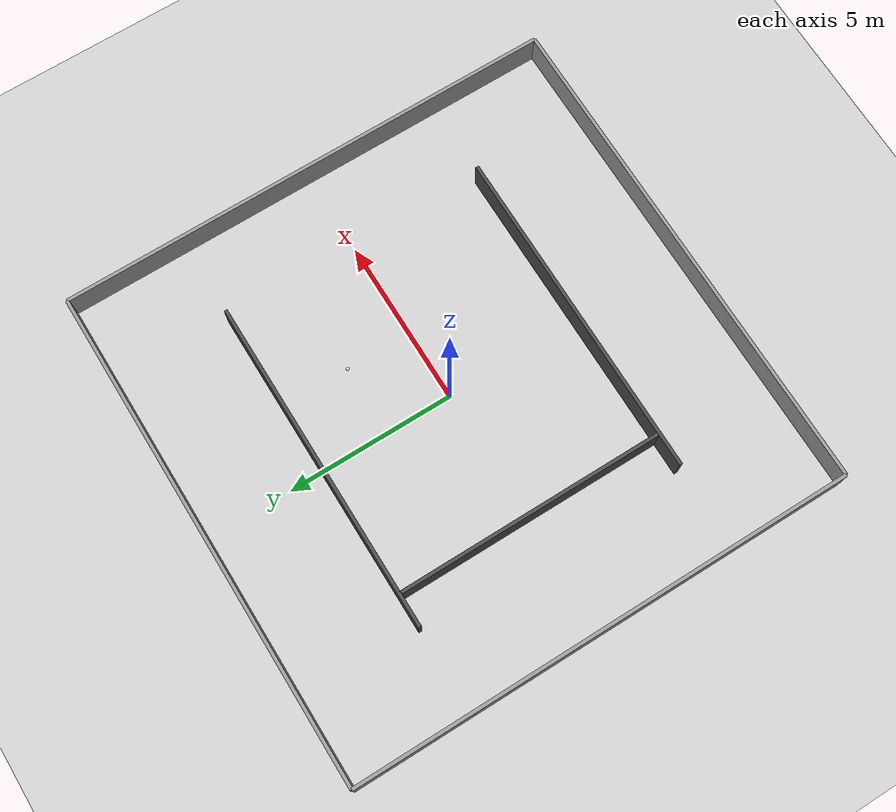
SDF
<sdf version="1.6">
 <world name="my_custom_indoor_world">
  <include><uri>model://sun</uri></include>
  <include><uri>model://ground_plane</uri></include>
  <light name="sun_light" type="directional">
   <pose>0 0 10 0 -30 0</pose>
   <diffuse>0.8 0.8 0.8 1</diffuse>
   <specular>0.2 0.2 0.2 1</specular>
   <attenuation>
    <range>1000</range>
    <constant>0.9</constant>
    <linear>0.01</linear>
    <quadratic>0.001</quadratic>
   </attenuation>
   <direction>-0.5 0.5 -1</direction>
  </light>
  <model name="wall_north">
   <pose>0 7.5 0.5 0 0 0</pose>
   <static>true</static>
   <link name="link">
    <collision name="collision"><geometry><box><size>15 0.1 1</size></box></geometry></collision>
    <visual name="visual">
     <geometry><box><size>15 0.1 1</size></box></geometry>
     <material>
      <script><uri>file://media/materials/scripts/gazebo.material</uri><name>Gazebo/Grey</name></script>
     </material>
    </visual>
   </link>
  </model>
  <model name="wall_south">
   <pose>0 -7.5 0.5 0 0 0</pose>
   <static>true</static>
   <link name="link">
    <collision name="collision"><geometry><box><size>15 0.1 1</size></box></geometry></collision>
    <visual name="visual">
     <geometry><box><size>15 0.1 1</size></box></geometry>
     <material>
      <script><uri>file://media/materials/scripts/gazebo.material</uri><name>Gazebo/Grey</name></script>
     </material>
    </visual>
   </link>
  </model>
  <model name="wall_east">
   <pose>7.5 0 0.5 0 0 1.5707</pose>
   <static>true</static>
   <link name="link">
    <collision name="collision"><geometry><box><size>15 0.1 1</size></box></geometry></collision>
    <visual name="visual">
     <geometry><box><size>15 0.1 1</size></box></geometry>
     <material>
      <script><uri>file://media/materials/scripts/gazebo.material</uri><name>Gazebo/Grey</name></script>
     </material>
    </visual>
   </link>
  </model>
  <model name="wall_west">
   <pose>-7.5 0 0.5 0 0 1.5707</pose>
   <static>true</static>
   <link name="link">
    <collision name="collision"><geometry><box><size>15 0.1 1</size></box></geometry></collision>
    <visual name="visual">
     <geometry><box><size>15 0.1 1</size></box></geometry>
     <material>
      <script><uri>file://media/materials/scripts/gazebo.material</uri><name>Gazebo/Grey</name></script>
     </material>
    </visual>
   </link>
  </model>
  <model name="partition_horizontal_top">
   <pose>0 4 0.5 0 0 0</pose>
   <static>true</static>
   <link name="link">
    <collision name="collision"><geometry><box><size>10 0.1 1</size></box></geometry></collision>
    <visual name="visual">
     <geometry><box><size>10 0.1 1</size></box></geometry>
     <material>
      <script><uri>file://media/materials/scripts/gazebo.material</uri><name>Gazebo/DarkGrey</name></script>
     </material>
    </visual>
   </link>
  </model>
  <model name="partition_horizontal_bottom">
   <pose>0 -4 0.5 0 0 0</pose>
   <static>true</static>
   <link name="link">
    <collision name="collision"><geometry><box><size>10 0.1 1</size></box></geometry></collision>
    <visual name="visual">
     <geometry><box><size>10 0.1 1</size></box></geometry>
     <material>
      <script><uri>file://media/materials/scripts/gazebo.material</uri><name>Gazebo/DarkGrey</name></script>
     </material>
    </visual>
   </link>
  </model>
  <model name="partition_vertical_left">
   <pose>-4 0 0.5 0 0 1.5707</pose>
   <static>true</static>
   <link name="link">
    <collision name="collision"><geometry><box><size>8 0.1 1</size></box></geometry></collision>
    <visual name="visual">
     <geometry><box><size>8 0.1 1</size></box></geometry>
     <material>
      <script><uri>file://media/materials/scripts/gazebo.material</uri><name>Gazebo/DarkGrey</name></script>
     </material>
    </visual>
   </link>
  </model>
  <model name="white_ball">
   <pose>2 2 0.5 0 0 0</pose>
   <link name="link">
    <inertial>
     <mass>0.1</mass>
     <inertia><ixx>0.0004</ixx><ixy>0</ixy><ixz>0</ixz><iyy>0.0004</iyy><iyz>0.0</iyz><izz>0.0004</izz></inertia>
    </inertial>
    <collision name="collision">
     <geometry><sphere><radius>0.05</radius></sphere></geometry>
     <surface><contact><ode><kp>1000000</kp><kd>1</kd></ode></contact></surface>
    </collision>
    <visual name="visual">
     <geometry><sphere><radius>0.05</radius></sphere></geometry>
     <material><ambient>1 1 1 1</ambient><diffuse>1 1 1 1</diffuse><specular>0.1 0.1 0.1 1</specular></material>
    </visual>
   </link>
  </model>
 </world>
</sdf>
